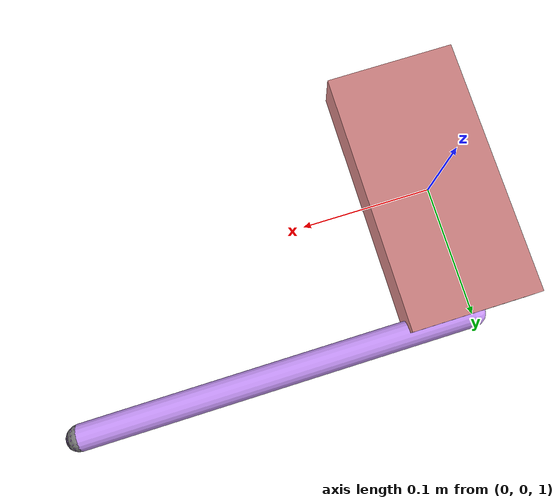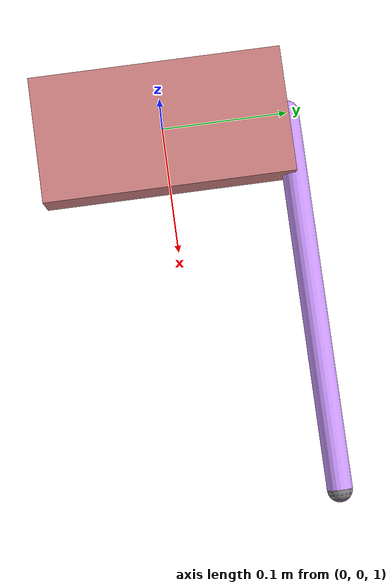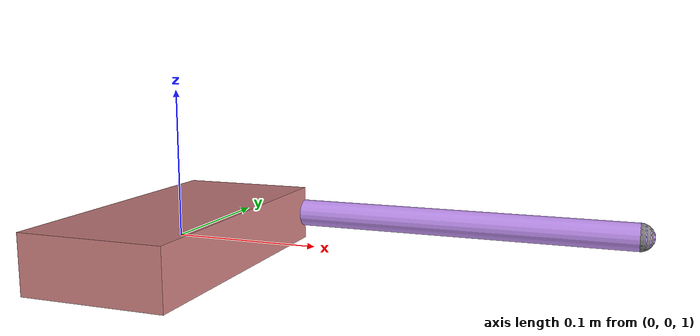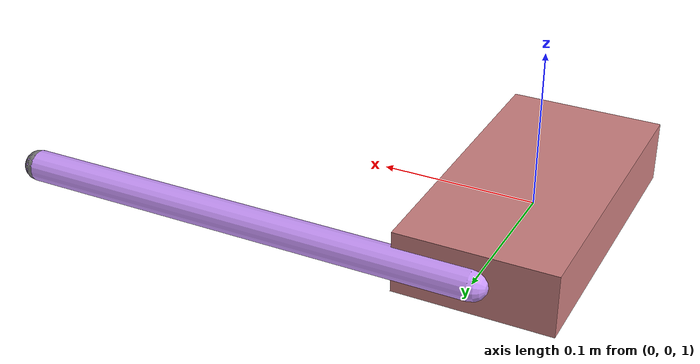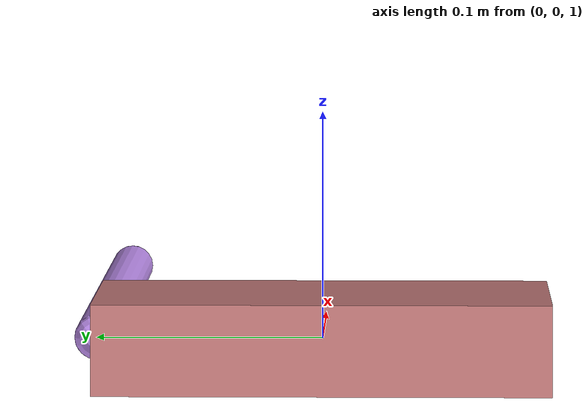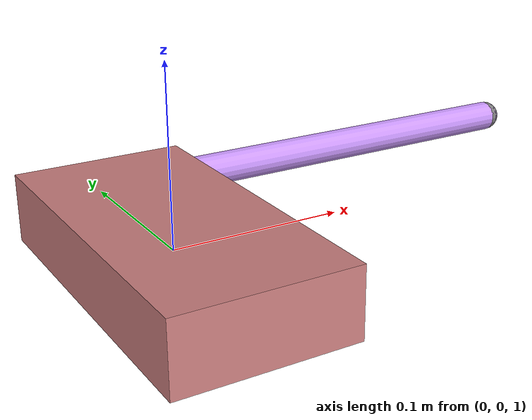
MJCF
<mujoco model="bat_bot">
  <option timestep="0.0001" gravity="0 0 -9.81" />

  <asset>
    <texture name="grid" type="2d" builtin="checker" width="512" height="512" rgb1=".1 .2 .3" rgb2=".2 .3 .4"/>
    <material name="grid" texture="grid" texrepeat="1 1" texuniform="true" reflectance=".2"/>
    <material name="fuselage_mat" rgba="0.8 0.5 0.5 1"/> <material name="wing_bone_mat" rgba="0.8 0.6 1.0 1"/> </asset>

  <worldbody>
    <geom name="floor" size="0 0 .05" type="plane" material="grid" condim="3"/>
    <light pos="0 0 3" dir="0 0 -1" directional="true"/>

    <body name="fuselage" pos="0 0 1">
      <joint type="free"/>
      <geom type="box" size="0.05 0.1 0.02" mass="0.5" material="fuselage_mat"/>

      <body name="left_wing_bone" pos="0 0.1 0" euler="0 0 0">
        <joint name="left_flap_joint" axis="0 1 0" range="-45 45" stiffness="0.1"/>

        <geom type="capsule" fromto="0 0 0  0.3 0 0" size="0.01" material="wing_bone_mat"/>

        <site name="bone_tip" pos="0.3 0 0" size="0.01"/>
      </body>
    </body>
  </worldbody>

  <actuator>
    <position joint="left_flap_joint" kp="10" name="left_flap_servo"/>
  </actuator>
</mujoco>
